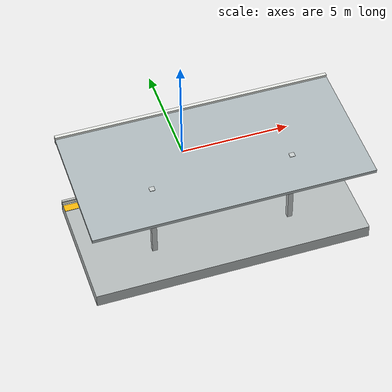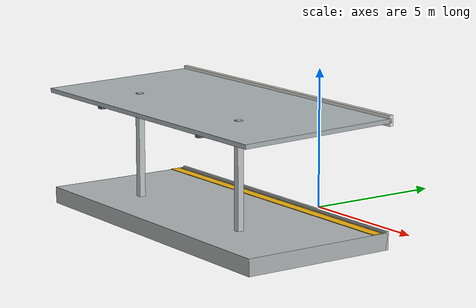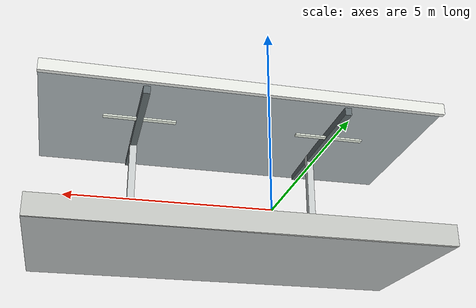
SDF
<?xml version="1.0"?>
<sdf version="1.9">
  <model name="station_platform_12m">
    <static>true</static>
    <plugin filename="gz-sim-label-system" name="gz::sim::systems::Label"><label>20</label></plugin>
    <link name="platform">
      <collision name="slab_collision"><pose>0 -4.55 0.29 0 0 0</pose><geometry><box><size>12 5.5 0.58</size></box></geometry></collision>
      <visual name="slab"><pose>0 -4.55 0.29 0 0 0</pose><geometry><box><size>12 5.5 0.58</size></box></geometry><material><diffuse>0.70 0.72 0.72 1</diffuse><pbr><metal><albedo_map>model://station_platform_12m/materials/textures/platform_concrete_albedo.png</albedo_map><roughness>0.94</roughness><metalness>0</metalness></metal></pbr></material></visual>
      <visual name="edge_fascia"><pose>0 -1.79 0.32 0 0 0</pose><geometry><box><size>12 0.10 0.64</size></box></geometry><material><diffuse>0.76 0.77 0.75 1</diffuse></material></visual>
      <visual name="tactile_yellow"><pose>0 -2.20 0.591 0 0 0</pose><geometry><box><size>12 0.34 0.022</size></box></geometry><material><ambient>0.75 0.54 0.02 1</ambient><diffuse>0.96 0.71 0.04 1</diffuse><pbr><metal><roughness>0.8</roughness><metalness>0</metalness></metal></pbr></material></visual>
      <visual name="safety_line"><pose>0 -1.92 0.594 0 0 0</pose><geometry><box><size>12 0.055 0.026</size></box></geometry><material><diffuse>0.90 0.89 0.80 1</diffuse></material></visual>
      <collision name="column_left_collision"><pose>-3 -5.58 2.43 0 0 0</pose><geometry><box><size>0.22 0.22 3.68</size></box></geometry></collision>
      <collision name="column_right_collision"><pose>3 -5.58 2.43 0 0 0</pose><geometry><box><size>0.22 0.22 3.68</size></box></geometry></collision>
      <visual name="column_left"><pose>-3 -5.58 2.43 0 0 0</pose><geometry><box><size>0.22 0.22 3.68</size></box></geometry><material><diffuse>0.78 0.80 0.80 1</diffuse><pbr><metal><roughness>0.34</roughness><metalness>0.72</metalness></metal></pbr></material></visual>
      <visual name="column_right"><pose>3 -5.58 2.43 0 0 0</pose><geometry><box><size>0.22 0.22 3.68</size></box></geometry><material><diffuse>0.78 0.80 0.80 1</diffuse><pbr><metal><roughness>0.34</roughness><metalness>0.72</metalness></metal></pbr></material></visual>
      <visual name="roof"><pose>0 -4.55 4.20 0.028 0 0</pose><geometry><box><size>12 5.75 0.15</size></box></geometry><material><diffuse>0.68 0.72 0.73 1</diffuse><pbr><metal><roughness>0.44</roughness><metalness>0.58</metalness></metal></pbr></material></visual>
      <visual name="roof_edge"><pose>0 -1.69 4.28 0 0 0</pose><geometry><box><size>12 0.15 0.36</size></box></geometry><material><diffuse>0.90 0.91 0.89 1</diffuse></material></visual>
      <visual name="beam_left"><pose>-3 -4.55 4.00 0 0 0</pose><geometry><box><size>0.20 5.3 0.24</size></box></geometry><material><diffuse>0.38 0.42 0.43 1</diffuse></material></visual>
      <visual name="beam_right"><pose>3 -4.55 4.00 0 0 0</pose><geometry><box><size>0.20 5.3 0.24</size></box></geometry><material><diffuse>0.38 0.42 0.43 1</diffuse></material></visual>
      <visual name="light_a"><pose>-3 -3.65 3.93 0 0 0</pose><geometry><box><size>2.2 0.16 0.05</size></box></geometry><material><emissive>0.92 0.95 0.90 1</emissive><diffuse>0.92 0.95 0.90 1</diffuse></material></visual>
      <visual name="light_b"><pose>3 -3.65 3.93 0 0 0</pose><geometry><box><size>2.2 0.16 0.05</size></box></geometry><material><emissive>0.92 0.95 0.90 1</emissive><diffuse>0.92 0.95 0.90 1</diffuse></material></visual>
    </link>
  </model>
</sdf>
